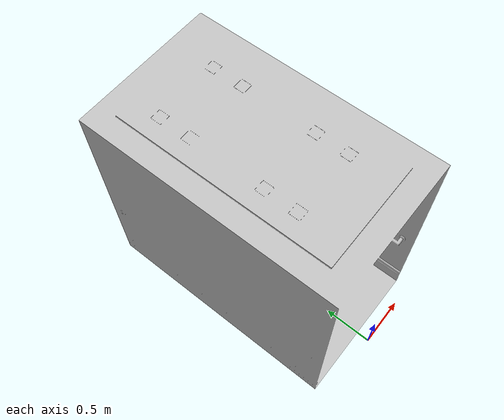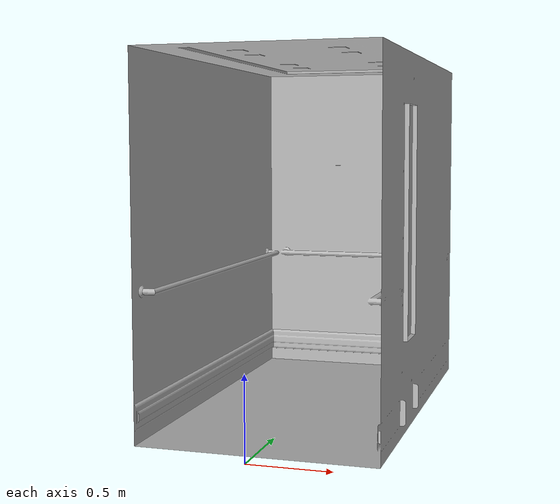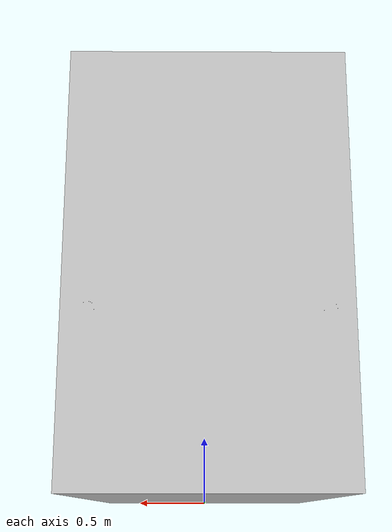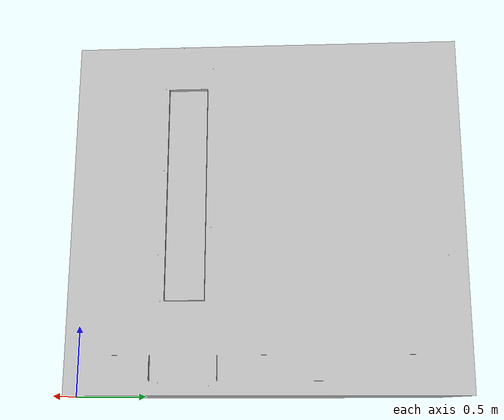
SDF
<?xml version="1.0" ?>
<sdf version="1.6">
  <model name="aws_robomaker_hospital_elevator_01_car">
    <link name="link">
      <visual name="visual">
        <geometry>
          <mesh>
            <uri>model://aws_robomaker_hospital_elevator_01_car/meshes/aws_robomaker_hospital_elevator_01_car_visual.dae</uri>
          </mesh>
        </geometry>
      </visual>
      <collision name="collision">
        <geometry>
          <mesh>
            <uri>model://aws_robomaker_hospital_elevator_01_car/meshes/aws_robomaker_hospital_elevator_01_car_collision.dae</uri>
          </mesh>
        </geometry>
      </collision>
    </link>
    <static>1</static>
  </model>
</sdf>
